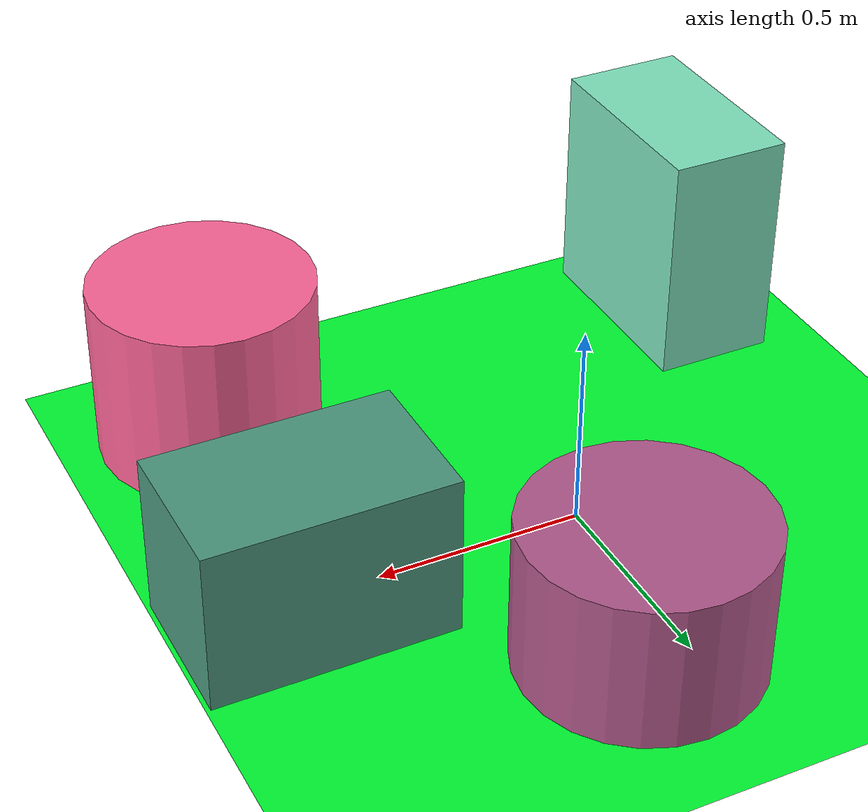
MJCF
<mujoco>
   <asset>
<texture type="skybox" builtin="gradient" rgb1="0.9 0.7 0.6" rgb2="0.7 0.4 0.8" width="256" height="256"/>
<texture name="checker_0" builtin="checker" type="2d" rgb1="1.0 0.5 0.4" rgb2="0.4 0.2 0.7" width="200" height="200"/>
<texture name="checker_1" builtin="checker" type="2d" rgb1="0.1 1.0 1.0" rgb2="0.9 0.8 0.5" width="200" height="200"/>
<texture name="flat_2" builtin="flat" rgb1="0.3 0.6 0.5" rgb2="0.3 0.6 0.5"  width="200" height="200"/>
<texture name="flat_3" builtin="flat" rgb1="1.0 0.4 0.6" rgb2="1.0 0.4 0.6"  width="200" height="200"/><material name="checker_0_mat" reflectance="0" texrepeat="7 7" texture="checker_0" texuniform="false" />
<material name="checker_1_mat" reflectance="0" texrepeat="6 6" texture="checker_1" texuniform="false" />
<material name="flat_2_mat" reflectance="0" texture="flat_2" texuniform="true"/>
<material name="flat_3_mat" reflectance="0" texture="flat_3" texuniform="true"/>
   </asset>

   <worldbody>
      <light diffuse=".9 .9 .9" pos="0 0 3" dir="0 0 -1"/>
     <geom type="plane" size="1 1 0.1" rgba="0.0 1.0 0.2 1"/>
<geom type="cylinder" pos="0.11 0.47 0.18" size="0.28 0.18 0.18" material="checker_0_mat" />
<geom type="box" pos="-0.63 -0.67 0.29" size="0.15 0.26 0.29" material="checker_1_mat" />
<geom type="box" pos="0.7 0.05 0.2" size="0.29 0.18 0.2" material="flat_2_mat" />
<geom type="cylinder" pos="0.64 -0.66 0.22" size="0.27 0.22 0.22" material="flat_3_mat" /><camera euler="60 0 180" fovy="60" name="camera_a" pos="0 -1.5 1"></camera>   </worldbody>
</mujoco>
